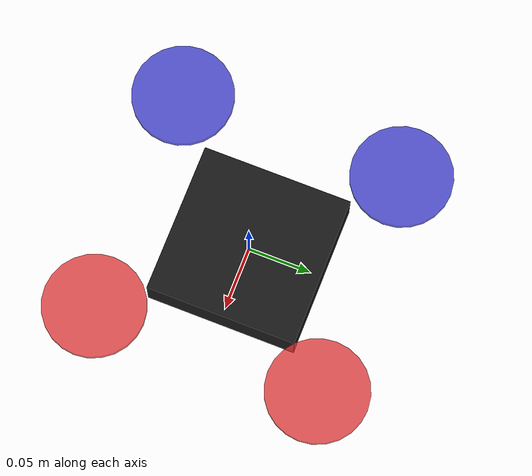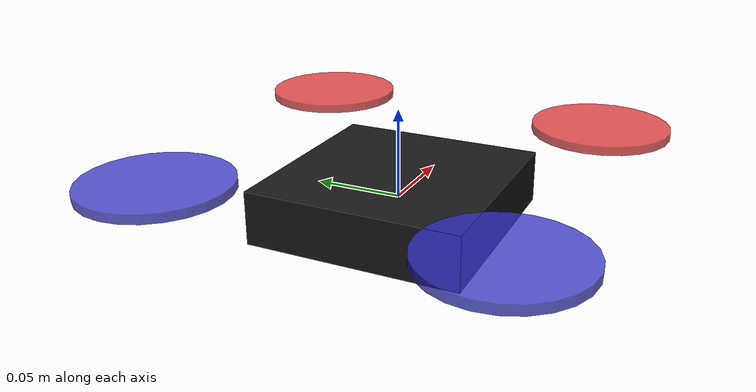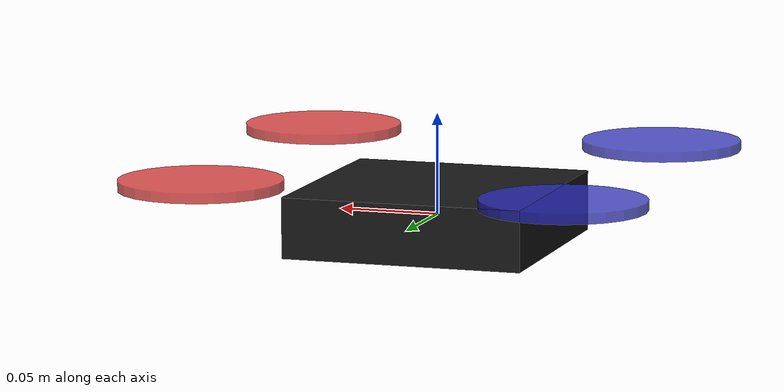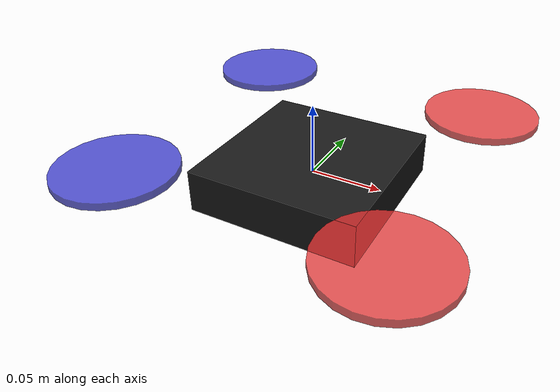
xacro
<?xml version="1.0"?>
<robot xmlns:xacro="http://www.ros.org/wiki/xacro" name="quadcopter">

  <xacro:property name="body_mass" value="0.250"/>
  <xacro:property name="arm_length" value="0.09"/>
  <xacro:property name="rotor_mass" value="0.010"/>
  <xacro:property name="rotor_radius" value="0.04"/>

  <!-- Base Link / Center of Mass -->
  <link name="base_link">
    <visual>
      <origin xyz="0 0 0" rpy="0 0 0"/>
      <geometry>
        <box size="0.12 0.12 0.03"/>
      </geometry>
      <material name="drone_body">
        <color rgba="0.1 0.1 0.1 1.0"/>
      </material>
    </visual>
    <collision>
      <origin xyz="0 0 0" rpy="0 0 0"/>
      <geometry>
        <box size="0.12 0.12 0.03"/>
      </geometry>
    </collision>
    <inertial>
      <origin xyz="0 0 0" rpy="0 0 0"/>
      <mass value="${body_mass}"/>
      <inertia ixx="0.00035" ixy="0" ixz="0" iyy="0.00035" iyz="0" izz="0.00065"/>
    </inertial>
  </link>

  <!-- IMU Frame -->
  <link name="imu_link"/>
  <joint name="base_to_imu" type="fixed">
    <parent link="base_link"/>
    <child link="imu_link"/>
    <origin xyz="0 0 0.01" rpy="0 0 0"/>
  </joint>

  <!-- Downward Optical Flow / Rangefinder -->
  <link name="rangefinder_link"/>
  <joint name="base_to_rangefinder" type="fixed">
    <parent link="base_link"/>
    <child link="rangefinder_link"/>
    <origin xyz="0 0 -0.015" rpy="0 1.5708 0"/>
  </joint>

  <!-- Rotor Macro -->
  <xacro:macro name="rotor" params="name x y dir color">
    <link name="${name}">
      <visual>
        <origin xyz="0 0 0.01" rpy="0 0 0"/>
        <geometry>
          <cylinder radius="${rotor_radius}" length="0.005"/>
        </geometry>
        <material name="${color}">
          <color rgba="${color}"/>
        </material>
      </visual>
      <collision>
        <origin xyz="0 0 0.01" rpy="0 0 0"/>
        <geometry>
          <cylinder radius="${rotor_radius}" length="0.005"/>
        </geometry>
      </collision>
      <inertial>
        <origin xyz="0 0 0.01" rpy="0 0 0"/>
        <mass value="${rotor_mass}"/>
        <inertia ixx="0.000004" ixy="0" ixz="0" iyy="0.000004" iyz="0" izz="0.000008"/>
      </inertial>
    </link>

    <joint name="${name}_joint" type="continuous">
      <parent link="base_link"/>
      <child link="${name}"/>
      <origin xyz="${x} ${y} 0.015" rpy="0 0 0"/>
      <axis xyz="0 0 ${dir}"/>
    </joint>
  </xacro:macro>

  <xacro:rotor name="rotor_front_right" x="${arm_length}" y="-${arm_length}" dir="1" color="0.9 0.2 0.2 0.8"/>
  <xacro:rotor name="rotor_front_left"  x="${arm_length}" y="${arm_length}"  dir="-1" color="0.9 0.2 0.2 0.8"/>
  <xacro:rotor name="rotor_back_left"   x="-${arm_length}" y="${arm_length}" dir="1" color="0.2 0.2 0.8 0.8"/>
  <xacro:rotor name="rotor_back_right"  x="-${arm_length}" y="-${arm_length}" dir="-1" color="0.2 0.2 0.8 0.8"/>

</robot>
